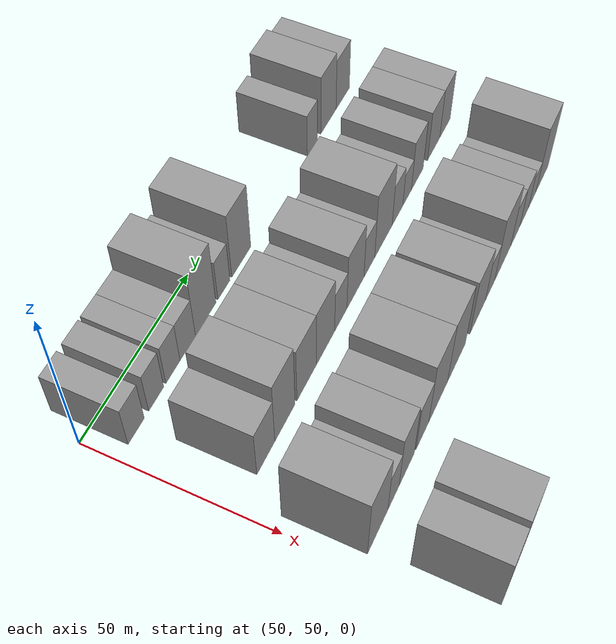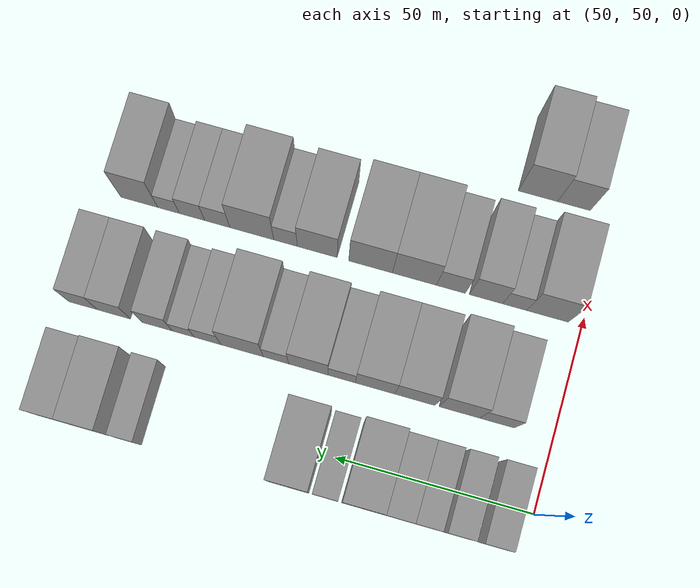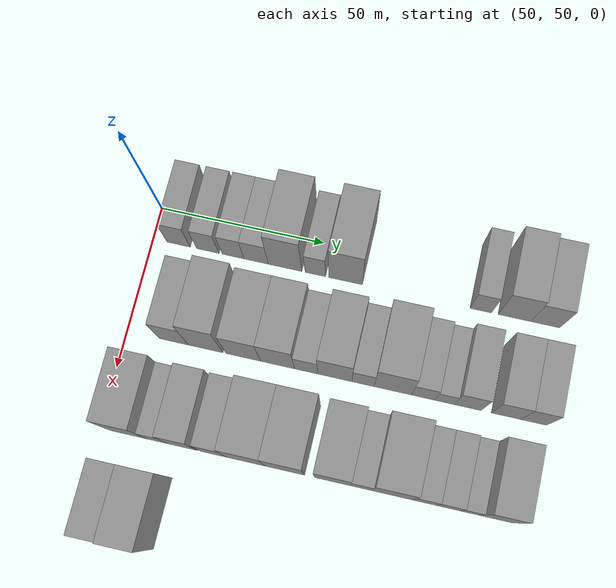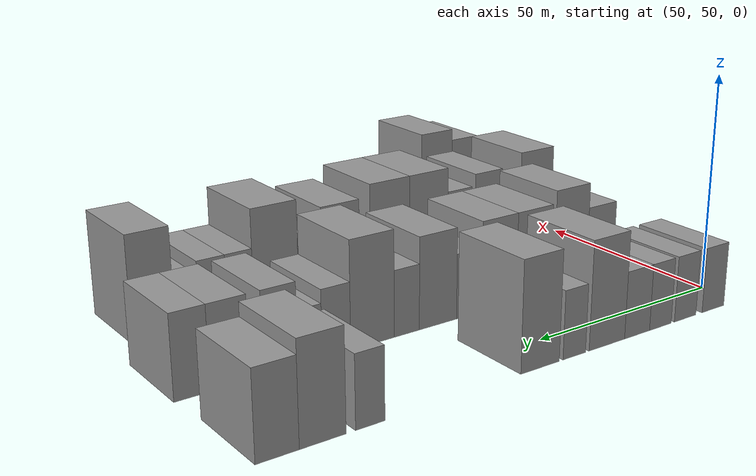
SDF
<sdf version="1.6">
 <world name="default">
  <model name="building_62">
   <static>1</static>
   <pose>50.0000 57.8925 0 0.000000 0.000000 0.000000</pose>
   <link name="link">
    <pose>0 0 7.50 0 0 0</pose>
    <collision name="collision"><geometry><box><size>20.0000 7.1673 15.0000</size></box></geometry></collision>
    <visual name="visual">
     <cast_shadows>0</cast_shadows>
     <geometry><box><size>20.0000 7.1673 15.0000</size></box></geometry>
     <material>
      <script>
       <uri>model://grey_wall/materials/scripts</uri>
       <uri>model://grey_wall/materials/textures</uri>
       <name>vrc/grey_wall</name>
      </script>
     </material>
    </visual>
   </link>
  </model>
  <model name="building_63">
   <static>1</static>
   <pose>50.0000 66.8989 0 0.000000 0.000000 0.000000</pose>
   <link name="link">
    <pose>0 0 7.50 0 0 0</pose>
    <collision name="collision"><geometry><box><size>20.0000 6.8454 15.0000</size></box></geometry></collision>
    <visual name="visual">
     <cast_shadows>0</cast_shadows>
     <geometry><box><size>20.0000 6.8454 15.0000</size></box></geometry>
     <material>
      <script>
       <uri>model://grey_wall/materials/scripts</uri>
       <uri>model://grey_wall/materials/textures</uri>
       <name>vrc/grey_wall</name>
      </script>
     </material>
    </visual>
   </link>
  </model>
  <model name="building_64">
   <static>1</static>
   <pose>50.0000 74.6538 0 0.000000 0.000000 0.000000</pose>
   <link name="link">
    <pose>0 0 7.50 0 0 0</pose>
    <collision name="collision"><geometry><box><size>20.0000 6.6643 15.0000</size></box></geometry></collision>
    <visual name="visual">
     <cast_shadows>0</cast_shadows>
     <geometry><box><size>20.0000 6.6643 15.0000</size></box></geometry>
     <material>
      <script>
       <uri>model://grey_wall/materials/scripts</uri>
       <uri>model://grey_wall/materials/textures</uri>
       <name>vrc/grey_wall</name>
      </script>
     </material>
    </visual>
   </link>
  </model>
  <model name="building_65">
   <static>1</static>
   <pose>50.0000 81.7126 0 0.000000 0.000000 0.000000</pose>
   <link name="link">
    <pose>0 0 7.50 0 0 0</pose>
    <collision name="collision"><geometry><box><size>20.0000 7.4533 15.0000</size></box></geometry></collision>
    <visual name="visual">
     <cast_shadows>0</cast_shadows>
     <geometry><box><size>20.0000 7.4533 15.0000</size></box></geometry>
     <material>
      <script>
       <uri>model://grey_wall/materials/scripts</uri>
       <uri>model://grey_wall/materials/textures</uri>
       <name>vrc/grey_wall</name>
      </script>
     </material>
    </visual>
   </link>
  </model>
  <model name="building_66">
   <static>1</static>
   <pose>50.0000 90.5444 0 0.000000 0.000000 0.000000</pose>
   <link name="link">
    <pose>0 0 12.00 0 0 0</pose>
    <collision name="collision"><geometry><box><size>20.0000 10.2104 24.0000</size></box></geometry></collision>
    <visual name="visual">
     <cast_shadows>0</cast_shadows>
     <geometry><box><size>20.0000 10.2104 24.0000</size></box></geometry>
     <material>
      <script>
       <uri>model://grey_wall/materials/scripts</uri>
       <uri>model://grey_wall/materials/textures</uri>
       <name>vrc/grey_wall</name>
      </script>
     </material>
    </visual>
   </link>
  </model>
  <model name="building_67">
   <static>1</static>
   <pose>50.0000 99.7578 0 0.000000 0.000000 0.000000</pose>
   <link name="link">
    <pose>0 0 7.50 0 0 0</pose>
    <collision name="collision"><geometry><box><size>20.0000 6.2163 15.0000</size></box></geometry></collision>
    <visual name="visual">
     <cast_shadows>0</cast_shadows>
     <geometry><box><size>20.0000 6.2163 15.0000</size></box></geometry>
     <material>
      <script>
       <uri>model://grey_wall/materials/scripts</uri>
       <uri>model://grey_wall/materials/textures</uri>
       <name>vrc/grey_wall</name>
      </script>
     </material>
    </visual>
   </link>
  </model>
  <model name="building_68">
   <static>1</static>
   <pose>50.0000 108.9361 0 0.000000 0.000000 0.000000</pose>
   <link name="link">
    <pose>0 0 12.00 0 0 0</pose>
    <collision name="collision"><geometry><box><size>20.0000 10.1404 24.0000</size></box></geometry></collision>
    <visual name="visual">
     <cast_shadows>0</cast_shadows>
     <geometry><box><size>20.0000 10.1404 24.0000</size></box></geometry>
     <material>
      <script>
       <uri>model://grey_wall/materials/scripts</uri>
       <uri>model://grey_wall/materials/textures</uri>
       <name>vrc/grey_wall</name>
      </script>
     </material>
    </visual>
   </link>
  </model>
  <model name="building_69">
   <static>1</static>
   <pose>50.0000 149.5872 0 0.000000 0.000000 0.000000</pose>
   <link name="link">
    <pose>0 0 7.50 0 0 0</pose>
    <collision name="collision"><geometry><box><size>20.0000 6.3872 15.0000</size></box></geometry></collision>
    <visual name="visual">
     <cast_shadows>0</cast_shadows>
     <geometry><box><size>20.0000 6.3872 15.0000</size></box></geometry>
     <material>
      <script>
       <uri>model://grey_wall/materials/scripts</uri>
       <uri>model://grey_wall/materials/textures</uri>
       <name>vrc/grey_wall</name>
      </script>
     </material>
    </visual>
   </link>
  </model>
  <model name="building_70">
   <static>1</static>
   <pose>50.0000 159.5993 0 0.000000 0.000000 0.000000</pose>
   <link name="link">
    <pose>0 0 10.50 0 0 0</pose>
    <collision name="collision"><geometry><box><size>20.0000 9.6369 21.0000</size></box></geometry></collision>
    <visual name="visual">
     <cast_shadows>0</cast_shadows>
     <geometry><box><size>20.0000 9.6369 21.0000</size></box></geometry>
     <material>
      <script>
       <uri>model://grey_wall/materials/scripts</uri>
       <uri>model://grey_wall/materials/textures</uri>
       <name>vrc/grey_wall</name>
      </script>
     </material>
    </visual>
   </link>
  </model>
  <model name="building_71">
   <static>1</static>
   <pose>50.0000 168.7643 0 0.000000 0.000000 0.000000</pose>
   <link name="link">
    <pose>0 0 9.00 0 0 0</pose>
    <collision name="collision"><geometry><box><size>20.0000 8.6932 18.0000</size></box></geometry></collision>
    <visual name="visual">
     <cast_shadows>0</cast_shadows>
     <geometry><box><size>20.0000 8.6932 18.0000</size></box></geometry>
     <material>
      <script>
       <uri>model://grey_wall/materials/scripts</uri>
       <uri>model://grey_wall/materials/textures</uri>
       <name>vrc/grey_wall</name>
      </script>
     </material>
    </visual>
   </link>
  </model>
  <model name="building_171">
   <static>1</static>
   <pose>79.0000 64.2986 0 0.000000 0.000000 0.000000</pose>
   <link name="link">
    <pose>0 0 9.00 0 0 0</pose>
    <collision name="collision"><geometry><box><size>20.0000 8.7936 18.0000</size></box></geometry></collision>
    <visual name="visual">
     <cast_shadows>0</cast_shadows>
     <geometry><box><size>20.0000 8.7936 18.0000</size></box></geometry>
     <material>
      <script>
       <uri>model://grey_wall/materials/scripts</uri>
       <uri>model://grey_wall/materials/textures</uri>
       <name>vrc/grey_wall</name>
      </script>
     </material>
    </visual>
   </link>
  </model>
  <model name="building_172">
   <static>1</static>
   <pose>79.0000 73.8368 0 0.000000 0.000000 0.000000</pose>
   <link name="link">
    <pose>0 0 12.00 0 0 0</pose>
    <collision name="collision"><geometry><box><size>20.0000 10.2828 24.0000</size></box></geometry></collision>
    <visual name="visual">
     <cast_shadows>0</cast_shadows>
     <geometry><box><size>20.0000 10.2828 24.0000</size></box></geometry>
     <material>
      <script>
       <uri>model://grey_wall/materials/scripts</uri>
       <uri>model://grey_wall/materials/textures</uri>
       <name>vrc/grey_wall</name>
      </script>
     </material>
    </visual>
   </link>
  </model>
  <model name="building_173">
   <static>1</static>
   <pose>79.0000 85.1371 0 0.000000 0.000000 0.000000</pose>
   <link name="link">
    <pose>0 0 10.50 0 0 0</pose>
    <collision name="collision"><geometry><box><size>20.0000 10.3178 21.0000</size></box></geometry></collision>
    <visual name="visual">
     <cast_shadows>0</cast_shadows>
     <geometry><box><size>20.0000 10.3178 21.0000</size></box></geometry>
     <material>
      <script>
       <uri>model://grey_wall/materials/scripts</uri>
       <uri>model://grey_wall/materials/textures</uri>
       <name>vrc/grey_wall</name>
      </script>
     </material>
    </visual>
   </link>
  </model>
  <model name="building_174">
   <static>1</static>
   <pose>79.0000 95.3200 0 0.000000 0.000000 0.000000</pose>
   <link name="link">
    <pose>0 0 10.50 0 0 0</pose>
    <collision name="collision"><geometry><box><size>20.0000 10.0480 21.0000</size></box></geometry></collision>
    <visual name="visual">
     <cast_shadows>0</cast_shadows>
     <geometry><box><size>20.0000 10.0480 21.0000</size></box></geometry>
     <material>
      <script>
       <uri>model://grey_wall/materials/scripts</uri>
       <uri>model://grey_wall/materials/textures</uri>
       <name>vrc/grey_wall</name>
      </script>
     </material>
    </visual>
   </link>
  </model>
  <model name="building_175">
   <static>1</static>
   <pose>79.0000 103.8304 0 0.000000 0.000000 0.000000</pose>
   <link name="link">
    <pose>0 0 7.50 0 0 0</pose>
    <collision name="collision"><geometry><box><size>20.0000 6.9727 15.0000</size></box></geometry></collision>
    <visual name="visual">
     <cast_shadows>0</cast_shadows>
     <geometry><box><size>20.0000 6.9727 15.0000</size></box></geometry>
     <material>
      <script>
       <uri>model://grey_wall/materials/scripts</uri>
       <uri>model://grey_wall/materials/textures</uri>
       <name>vrc/grey_wall</name>
      </script>
     </material>
    </visual>
   </link>
  </model>
  <model name="building_176">
   <static>1</static>
   <pose>79.0000 112.3336 0 0.000000 0.000000 0.000000</pose>
   <link name="link">
    <pose>0 0 10.50 0 0 0</pose>
    <collision name="collision"><geometry><box><size>20.0000 10.0338 21.0000</size></box></geometry></collision>
    <visual name="visual">
     <cast_shadows>0</cast_shadows>
     <geometry><box><size>20.0000 10.0338 21.0000</size></box></geometry>
     <material>
      <script>
       <uri>model://grey_wall/materials/scripts</uri>
       <uri>model://grey_wall/materials/textures</uri>
       <name>vrc/grey_wall</name>
      </script>
     </material>
    </visual>
   </link>
  </model>
  <model name="building_177">
   <static>1</static>
   <pose>79.0000 120.6049 0 0.000000 0.000000 0.000000</pose>
   <link name="link">
    <pose>0 0 7.50 0 0 0</pose>
    <collision name="collision"><geometry><box><size>20.0000 6.5088 15.0000</size></box></geometry></collision>
    <visual name="visual">
     <cast_shadows>0</cast_shadows>
     <geometry><box><size>20.0000 6.5088 15.0000</size></box></geometry>
     <material>
      <script>
       <uri>model://grey_wall/materials/scripts</uri>
       <uri>model://grey_wall/materials/textures</uri>
       <name>vrc/grey_wall</name>
      </script>
     </material>
    </visual>
   </link>
  </model>
  <model name="building_178">
   <static>1</static>
   <pose>79.0000 129.3182 0 0.000000 0.000000 0.000000</pose>
   <link name="link">
    <pose>0 0 12.00 0 0 0</pose>
    <collision name="collision"><geometry><box><size>20.0000 10.9177 24.0000</size></box></geometry></collision>
    <visual name="visual">
     <cast_shadows>0</cast_shadows>
     <geometry><box><size>20.0000 10.9177 24.0000</size></box></geometry>
     <material>
      <script>
       <uri>model://grey_wall/materials/scripts</uri>
       <uri>model://grey_wall/materials/textures</uri>
       <name>vrc/grey_wall</name>
      </script>
     </material>
    </visual>
   </link>
  </model>
  <model name="building_179">
   <static>1</static>
   <pose>79.0000 138.2086 0 0.000000 0.000000 0.000000</pose>
   <link name="link">
    <pose>0 0 7.50 0 0 0</pose>
    <collision name="collision"><geometry><box><size>20.0000 6.8632 15.0000</size></box></geometry></collision>
    <visual name="visual">
     <cast_shadows>0</cast_shadows>
     <geometry><box><size>20.0000 6.8632 15.0000</size></box></geometry>
     <material>
      <script>
       <uri>model://grey_wall/materials/scripts</uri>
       <uri>model://grey_wall/materials/textures</uri>
       <name>vrc/grey_wall</name>
      </script>
     </material>
    </visual>
   </link>
  </model>
  <model name="building_180">
   <static>1</static>
   <pose>79.0000 144.4731 0 0.000000 0.000000 0.000000</pose>
   <link name="link">
    <pose>0 0 6.00 0 0 0</pose>
    <collision name="collision"><geometry><box><size>20.0000 5.6658 12.0000</size></box></geometry></collision>
    <visual name="visual">
     <cast_shadows>0</cast_shadows>
     <geometry><box><size>20.0000 5.6658 12.0000</size></box></geometry>
     <material>
      <script>
       <uri>model://grey_wall/materials/scripts</uri>
       <uri>model://grey_wall/materials/textures</uri>
       <name>vrc/grey_wall</name>
      </script>
     </material>
    </visual>
   </link>
  </model>
  <model name="building_181">
   <static>1</static>
   <pose>79.0000 151.2581 0 0.000000 0.000000 0.000000</pose>
   <link name="link">
    <pose>0 0 9.00 0 0 0</pose>
    <collision name="collision"><geometry><box><size>20.0000 7.9043 18.0000</size></box></geometry></collision>
    <visual name="visual">
     <cast_shadows>0</cast_shadows>
     <geometry><box><size>20.0000 7.9043 18.0000</size></box></geometry>
     <material>
      <script>
       <uri>model://grey_wall/materials/scripts</uri>
       <uri>model://grey_wall/materials/textures</uri>
       <name>vrc/grey_wall</name>
      </script>
     </material>
    </visual>
   </link>
  </model>
  <model name="building_182">
   <static>1</static>
   <pose>79.0000 162.4595 0 0.000000 0.000000 0.000000</pose>
   <link name="link">
    <pose>0 0 9.00 0 0 0</pose>
    <collision name="collision"><geometry><box><size>20.0000 8.4985 18.0000</size></box></geometry></collision>
    <visual name="visual">
     <cast_shadows>0</cast_shadows>
     <geometry><box><size>20.0000 8.4985 18.0000</size></box></geometry>
     <material>
      <script>
       <uri>model://grey_wall/materials/scripts</uri>
       <uri>model://grey_wall/materials/textures</uri>
       <name>vrc/grey_wall</name>
      </script>
     </material>
    </visual>
   </link>
  </model>
  <model name="building_183">
   <static>1</static>
   <pose>79.0000 170.4648 0 0.000000 0.000000 0.000000</pose>
   <link name="link">
    <pose>0 0 9.00 0 0 0</pose>
    <collision name="collision"><geometry><box><size>20.0000 7.5121 18.0000</size></box></geometry></collision>
    <visual name="visual">
     <cast_shadows>0</cast_shadows>
     <geometry><box><size>20.0000 7.5121 18.0000</size></box></geometry>
     <material>
      <script>
       <uri>model://grey_wall/materials/scripts</uri>
       <uri>model://grey_wall/materials/textures</uri>
       <name>vrc/grey_wall</name>
      </script>
     </material>
    </visual>
   </link>
  </model>
  <model name="building_279">
   <static>1</static>
   <pose>108.0000 58.9692 0 0.000000 0.000000 0.000000</pose>
   <link name="link">
    <pose>0 0 12.00 0 0 0</pose>
    <collision name="collision"><geometry><box><size>20.0000 10.7393 24.0000</size></box></geometry></collision>
    <visual name="visual">
     <cast_shadows>0</cast_shadows>
     <geometry><box><size>20.0000 10.7393 24.0000</size></box></geometry>
     <material>
      <script>
       <uri>model://grey_wall/materials/scripts</uri>
       <uri>model://grey_wall/materials/textures</uri>
       <name>vrc/grey_wall</name>
      </script>
     </material>
    </visual>
   </link>
  </model>
  <model name="building_280">
   <static>1</static>
   <pose>108.0000 67.4175 0 0.000000 0.000000 0.000000</pose>
   <link name="link">
    <pose>0 0 7.50 0 0 0</pose>
    <collision name="collision"><geometry><box><size>20.0000 6.1573 15.0000</size></box></geometry></collision>
    <visual name="visual">
     <cast_shadows>0</cast_shadows>
     <geometry><box><size>20.0000 6.1573 15.0000</size></box></geometry>
     <material>
      <script>
       <uri>model://grey_wall/materials/scripts</uri>
       <uri>model://grey_wall/materials/textures</uri>
       <name>vrc/grey_wall</name>
      </script>
     </material>
    </visual>
   </link>
  </model>
  <model name="building_281">
   <static>1</static>
   <pose>108.0000 74.7666 0 0.000000 0.000000 0.000000</pose>
   <link name="link">
    <pose>0 0 10.50 0 0 0</pose>
    <collision name="collision"><geometry><box><size>20.0000 8.5410 21.0000</size></box></geometry></collision>
    <visual name="visual">
     <cast_shadows>0</cast_shadows>
     <geometry><box><size>20.0000 8.5410 21.0000</size></box></geometry>
     <material>
      <script>
       <uri>model://grey_wall/materials/scripts</uri>
       <uri>model://grey_wall/materials/textures</uri>
       <name>vrc/grey_wall</name>
      </script>
     </material>
    </visual>
   </link>
  </model>
  <model name="building_282">
   <static>1</static>
   <pose>108.0000 83.7679 0 0.000000 0.000000 0.000000</pose>
   <link name="link">
    <pose>0 0 9.00 0 0 0</pose>
    <collision name="collision"><geometry><box><size>20.0000 7.4615 18.0000</size></box></geometry></collision>
    <visual name="visual">
     <cast_shadows>0</cast_shadows>
     <geometry><box><size>20.0000 7.4615 18.0000</size></box></geometry>
     <material>
      <script>
       <uri>model://grey_wall/materials/scripts</uri>
       <uri>model://grey_wall/materials/textures</uri>
       <name>vrc/grey_wall</name>
      </script>
     </material>
    </visual>
   </link>
  </model>
  <model name="building_283">
   <static>1</static>
   <pose>108.0000 93.1952 0 0.000000 0.000000 0.000000</pose>
   <link name="link">
    <pose>0 0 12.00 0 0 0</pose>
    <collision name="collision"><geometry><box><size>20.0000 11.3932 24.0000</size></box></geometry></collision>
    <visual name="visual">
     <cast_shadows>0</cast_shadows>
     <geometry><box><size>20.0000 11.3932 24.0000</size></box></geometry>
     <material>
      <script>
       <uri>model://grey_wall/materials/scripts</uri>
       <uri>model://grey_wall/materials/textures</uri>
       <name>vrc/grey_wall</name>
      </script>
     </material>
    </visual>
   </link>
  </model>
  <model name="building_284">
   <static>1</static>
   <pose>108.0000 104.5339 0 0.000000 0.000000 0.000000</pose>
   <link name="link">
    <pose>0 0 12.00 0 0 0</pose>
    <collision name="collision"><geometry><box><size>20.0000 11.2841 24.0000</size></box></geometry></collision>
    <visual name="visual">
     <cast_shadows>0</cast_shadows>
     <geometry><box><size>20.0000 11.2841 24.0000</size></box></geometry>
     <material>
      <script>
       <uri>model://grey_wall/materials/scripts</uri>
       <uri>model://grey_wall/materials/textures</uri>
       <name>vrc/grey_wall</name>
      </script>
     </material>
    </visual>
   </link>
  </model>
  <model name="building_285">
   <static>1</static>
   <pose>108.0000 118.3500 0 0.000000 0.000000 0.000000</pose>
   <link name="link">
    <pose>0 0 10.50 0 0 0</pose>
    <collision name="collision"><geometry><box><size>20.0000 10.3482 21.0000</size></box></geometry></collision>
    <visual name="visual">
     <cast_shadows>0</cast_shadows>
     <geometry><box><size>20.0000 10.3482 21.0000</size></box></geometry>
     <material>
      <script>
       <uri>model://grey_wall/materials/scripts</uri>
       <uri>model://grey_wall/materials/textures</uri>
       <name>vrc/grey_wall</name>
      </script>
     </material>
    </visual>
   </link>
  </model>
  <model name="building_286">
   <static>1</static>
   <pose>108.0000 126.5958 0 0.000000 0.000000 0.000000</pose>
   <link name="link">
    <pose>0 0 7.50 0 0 0</pose>
    <collision name="collision"><geometry><box><size>20.0000 6.1435 15.0000</size></box></geometry></collision>
    <visual name="visual">
     <cast_shadows>0</cast_shadows>
     <geometry><box><size>20.0000 6.1435 15.0000</size></box></geometry>
     <material>
      <script>
       <uri>model://grey_wall/materials/scripts</uri>
       <uri>model://grey_wall/materials/textures</uri>
       <name>vrc/grey_wall</name>
      </script>
     </material>
    </visual>
   </link>
  </model>
  <model name="building_287">
   <static>1</static>
   <pose>108.0000 135.4015 0 0.000000 0.000000 0.000000</pose>
   <link name="link">
    <pose>0 0 12.00 0 0 0</pose>
    <collision name="collision"><geometry><box><size>20.0000 11.4679 24.0000</size></box></geometry></collision>
    <visual name="visual">
     <cast_shadows>0</cast_shadows>
     <geometry><box><size>20.0000 11.4679 24.0000</size></box></geometry>
     <material>
      <script>
       <uri>model://grey_wall/materials/scripts</uri>
       <uri>model://grey_wall/materials/textures</uri>
       <name>vrc/grey_wall</name>
      </script>
     </material>
    </visual>
   </link>
  </model>
  <model name="building_288">
   <static>1</static>
   <pose>108.0000 144.4331 0 0.000000 0.000000 0.000000</pose>
   <link name="link">
    <pose>0 0 7.50 0 0 0</pose>
    <collision name="collision"><geometry><box><size>20.0000 6.5953 15.0000</size></box></geometry></collision>
    <visual name="visual">
     <cast_shadows>0</cast_shadows>
     <geometry><box><size>20.0000 6.5953 15.0000</size></box></geometry>
     <material>
      <script>
       <uri>model://grey_wall/materials/scripts</uri>
       <uri>model://grey_wall/materials/textures</uri>
       <name>vrc/grey_wall</name>
      </script>
     </material>
    </visual>
   </link>
  </model>
  <model name="building_289">
   <static>1</static>
   <pose>108.0000 151.0442 0 0.000000 0.000000 0.000000</pose>
   <link name="link">
    <pose>0 0 7.50 0 0 0</pose>
    <collision name="collision"><geometry><box><size>20.0000 6.6268 15.0000</size></box></geometry></collision>
    <visual name="visual">
     <cast_shadows>0</cast_shadows>
     <geometry><box><size>20.0000 6.6268 15.0000</size></box></geometry>
     <material>
      <script>
       <uri>model://grey_wall/materials/scripts</uri>
       <uri>model://grey_wall/materials/textures</uri>
       <name>vrc/grey_wall</name>
      </script>
     </material>
    </visual>
   </link>
  </model>
  <model name="building_290">
   <static>1</static>
   <pose>108.0000 157.1831 0 0.000000 0.000000 0.000000</pose>
   <link name="link">
    <pose>0 0 6.00 0 0 0</pose>
    <collision name="collision"><geometry><box><size>20.0000 5.6512 12.0000</size></box></geometry></collision>
    <visual name="visual">
     <cast_shadows>0</cast_shadows>
     <geometry><box><size>20.0000 5.6512 12.0000</size></box></geometry>
     <material>
      <script>
       <uri>model://grey_wall/materials/scripts</uri>
       <uri>model://grey_wall/materials/textures</uri>
       <name>vrc/grey_wall</name>
      </script>
     </material>
    </visual>
   </link>
  </model>
  <model name="building_291">
   <static>1</static>
   <pose>108.0000 164.8772 0 0.000000 0.000000 0.000000</pose>
   <link name="link">
    <pose>0 0 12.00 0 0 0</pose>
    <collision name="collision"><geometry><box><size>20.0000 9.7370 24.0000</size></box></geometry></collision>
    <visual name="visual">
     <cast_shadows>0</cast_shadows>
     <geometry><box><size>20.0000 9.7370 24.0000</size></box></geometry>
     <material>
      <script>
       <uri>model://grey_wall/materials/scripts</uri>
       <uri>model://grey_wall/materials/textures</uri>
       <name>vrc/grey_wall</name>
      </script>
     </material>
    </visual>
   </link>
  </model>
  <model name="building_397">
   <static>1</static>
   <pose>137.0000 59.5219 0 0.000000 0.000000 0.000000</pose>
   <link name="link">
    <pose>0 0 10.50 0 0 0</pose>
    <collision name="collision"><geometry><box><size>20.0000 8.4896 21.0000</size></box></geometry></collision>
    <visual name="visual">
     <cast_shadows>0</cast_shadows>
     <geometry><box><size>20.0000 8.4896 21.0000</size></box></geometry>
     <material>
      <script>
       <uri>model://grey_wall/materials/scripts</uri>
       <uri>model://grey_wall/materials/textures</uri>
       <name>vrc/grey_wall</name>
      </script>
     </material>
    </visual>
   </link>
  </model>
  <model name="building_398">
   <static>1</static>
   <pose>137.0000 68.8713 0 0.000000 0.000000 0.000000</pose>
   <link name="link">
    <pose>0 0 12.00 0 0 0</pose>
    <collision name="collision"><geometry><box><size>20.0000 10.2093 24.0000</size></box></geometry></collision>
    <visual name="visual">
     <cast_shadows>0</cast_shadows>
     <geometry><box><size>20.0000 10.2093 24.0000</size></box></geometry>
     <material>
      <script>
       <uri>model://grey_wall/materials/scripts</uri>
       <uri>model://grey_wall/materials/textures</uri>
       <name>vrc/grey_wall</name>
      </script>
     </material>
    </visual>
   </link>
  </model>
 </world>
</sdf>
